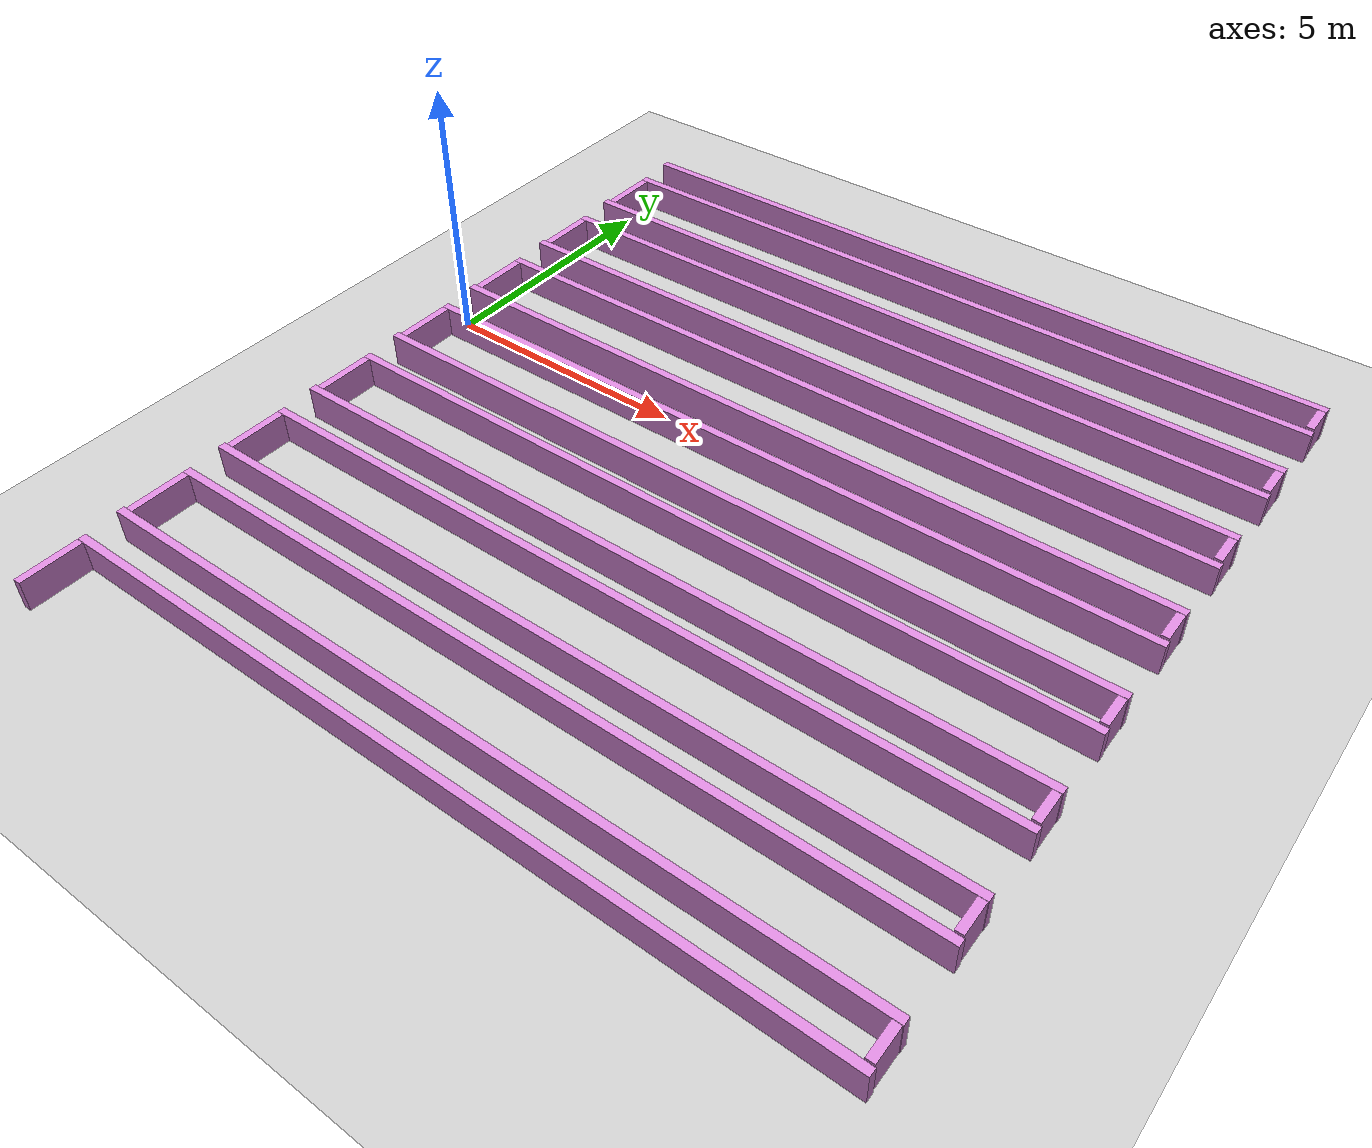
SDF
<sdf version="1.7">
 <world name="default">
  <light name="sun" type="directional">
   <pose>0 0 10 0 -0 0</pose>
   <diffuse>0.8 0.8 0.8 1</diffuse>
   <specular>0.2 0.2 0.2 1</specular>
   <attenuation>
    <range>1000</range>
    <constant>0.9</constant>
    <linear>0.01</linear>
    <quadratic>0.001</quadratic>
   </attenuation>
   <direction>-0.5 0.1 -0.9</direction>
   <spot><inner_angle>0</inner_angle><outer_angle>0</outer_angle><falloff>0</falloff></spot>
  </light>
  <model name="ground_plane">
   <static>1</static>
   <link name="link">
    <collision name="collision">
     <geometry><plane><normal>0 0 1</normal><size>100 100</size></plane></geometry>
     <surface>
      <contact><collide_bitmask>65535</collide_bitmask></contact>
      <friction><ode><mu>100</mu><mu2>50</mu2></ode></friction>
     </surface>
    </collision>
    <visual name="visual">
     <cast_shadows>0</cast_shadows>
     <geometry><plane><normal>0 0 1</normal><size>100 100</size></plane></geometry>
     <material>
      <script><uri>file://media/materials/scripts/gazebo.material</uri><name>Gazebo/Grey</name></script>
     </material>
    </visual>
   </link>
  </model>
  <gravity>0 0 -9.8</gravity>
  <magnetic_field>6e-06 2.3e-05 -4.2e-05</magnetic_field>
  <atmosphere type="adiabatic"/>
  <physics type="ode">
   <max_step_size>0.001</max_step_size>
   <real_time_factor>1</real_time_factor>
   <real_time_update_rate>1000</real_time_update_rate>
  </physics>
  <scene><ambient>0.4 0.4 0.4 1</ambient><background>0.7 0.7 0.7 1</background><shadows>1</shadows></scene>
  <audio><device>default</device></audio>
  <spherical_coordinates>
   <surface_model>EARTH_WGS84</surface_model>
   <latitude_deg>0</latitude_deg>
   <longitude_deg>0</longitude_deg>
   <elevation>0</elevation>
   <heading_deg>0</heading_deg>
  </spherical_coordinates>
  <model name="60cm_koridor">
   <pose>7.323 -0.566065 0 0 -0 0</pose>
   <link name="Wall_0">
    <collision name="Wall_0_Collision">
     <geometry><box><size>0.600141 0.15 0.65</size></box></geometry>
     <pose>0 0 0.325 0 -0 0</pose>
    </collision>
    <visual name="Wall_0_Visual">
     <pose>0 0 0.325 0 -0 0</pose>
     <geometry><box><size>0.600141 0.15 0.65</size></box></geometry>
     <material>
      <script><uri>file://media/materials/scripts/gazebo.material</uri><name>Gazebo/Grey</name></script>
      <ambient>0.862745 0.541176 0.866667 1</ambient>
     </material>
     <meta><layer>0</layer></meta>
    </visual>
    <pose>7.4125 0.576065 0 0 -0 -1.57302</pose>
   </link>
   <link name="Wall_11">
    <collision name="Wall_11_Collision">
     <geometry><box><size>1.15626 0.15 0.6</size></box></geometry>
     <pose>0 0 0.3 0 -0 0</pose>
    </collision>
    <visual name="Wall_11_Visual">
     <pose>0 0 0.3 0 -0 0</pose>
     <geometry><box><size>1.15626 0.15 0.6</size></box></geometry>
     <material>
      <script><uri>file://media/materials/scripts/gazebo.material</uri><name>Gazebo/Grey</name></script>
      <ambient>0.862745 0.541176 0.866667 1</ambient>
     </material>
     <meta><layer>0</layer></meta>
    </visual>
    <pose>-7.422 -0.450935 0 0 -0 -1.5708</pose>
   </link>
   <link name="Wall_2">
    <collision name="Wall_2_Collision">
     <geometry><box><size>15 0.15 0.65</size></box></geometry>
     <pose>0 0 0.325 0 -0 0</pose>
    </collision>
    <visual name="Wall_2_Visual">
     <pose>0 0 0.325 0 -0 0</pose>
     <geometry><box><size>15 0.15 0.65</size></box></geometry>
     <material>
      <script><uri>file://media/materials/scripts/gazebo.material</uri><name>Gazebo/Grey</name></script>
      <ambient>0.862745 0.541176 0.866667 1</ambient>
     </material>
     <meta><layer>0</layer></meta>
    </visual>
    <pose>-0.002 0.954065 0 0 -0 3.14159</pose>
   </link>
   <link name="Wall_4">
    <collision name="Wall_4_Collision">
     <geometry><box><size>15 0.15 0.6</size></box></geometry>
     <pose>0 0 0.3 0 -0 0</pose>
    </collision>
    <visual name="Wall_4_Visual">
     <pose>0 0 0.3 0 -0 0</pose>
     <geometry><box><size>15 0.15 0.6</size></box></geometry>
     <material>
      <script><uri>file://media/materials/scripts/gazebo.material</uri><name>Gazebo/Grey</name></script>
      <ambient>0.862745 0.541176 0.866667 1</ambient>
     </material>
     <meta><layer>0</layer></meta>
    </visual>
    <pose>0.002 0.203065 0 0 -0 0</pose>
   </link>
   <static>1</static>
  </model>
  <model name="60cm_koridor_clone">
   <pose>7.32347 -2.63015 0 0 -0 0</pose>
   <link name="Wall_0">
    <collision name="Wall_0_Collision">
     <geometry><box><size>0.600141 0.15 0.65</size></box></geometry>
     <pose>0 0 0.325 0 -0 0</pose>
    </collision>
    <visual name="Wall_0_Visual">
     <pose>0 0 0.325 0 -0 0</pose>
     <geometry><box><size>0.600141 0.15 0.65</size></box></geometry>
     <material>
      <script><uri>file://media/materials/scripts/gazebo.material</uri><name>Gazebo/Grey</name></script>
      <ambient>0.862745 0.541176 0.866667 1</ambient>
     </material>
     <meta><layer>0</layer></meta>
    </visual>
    <pose>7.4125 0.576065 0 0 -0 -1.57302</pose>
   </link>
   <link name="Wall_11">
    <collision name="Wall_11_Collision">
     <geometry><box><size>1.15626 0.15 0.6</size></box></geometry>
     <pose>0 0 0.3 0 -0 0</pose>
    </collision>
    <visual name="Wall_11_Visual">
     <pose>0 0 0.3 0 -0 0</pose>
     <geometry><box><size>1.15626 0.15 0.6</size></box></geometry>
     <material>
      <script><uri>file://media/materials/scripts/gazebo.material</uri><name>Gazebo/Grey</name></script>
      <ambient>0.862745 0.541176 0.866667 1</ambient>
     </material>
     <meta><layer>0</layer></meta>
    </visual>
    <pose>-7.422 -0.450935 0 0 -0 -1.5708</pose>
   </link>
   <link name="Wall_2">
    <collision name="Wall_2_Collision">
     <geometry><box><size>15 0.15 0.65</size></box></geometry>
     <pose>0 0 0.325 0 -0 0</pose>
    </collision>
    <visual name="Wall_2_Visual">
     <pose>0 0 0.325 0 -0 0</pose>
     <geometry><box><size>15 0.15 0.65</size></box></geometry>
     <material>
      <script><uri>file://media/materials/scripts/gazebo.material</uri><name>Gazebo/Grey</name></script>
      <ambient>0.862745 0.541176 0.866667 1</ambient>
     </material>
     <meta><layer>0</layer></meta>
    </visual>
    <pose>-0.002 0.954065 0 0 -0 3.14159</pose>
   </link>
   <link name="Wall_4">
    <collision name="Wall_4_Collision">
     <geometry><box><size>15 0.15 0.6</size></box></geometry>
     <pose>0 0 0.3 0 -0 0</pose>
    </collision>
    <visual name="Wall_4_Visual">
     <pose>0 0 0.3 0 -0 0</pose>
     <geometry><box><size>15 0.15 0.6</size></box></geometry>
     <material>
      <script><uri>file://media/materials/scripts/gazebo.material</uri><name>Gazebo/Grey</name></script>
      <ambient>0.862745 0.541176 0.866667 1</ambient>
     </material>
     <meta><layer>0</layer></meta>
    </visual>
    <pose>0.002 0.203065 0 0 -0 0</pose>
   </link>
   <static>1</static>
  </model>
  <model name="60cm_koridor_clone_clone">
   <pose>7.32707 -4.69709 0 0 -0 0</pose>
   <link name="Wall_0">
    <collision name="Wall_0_Collision">
     <geometry><box><size>0.600141 0.15 0.65</size></box></geometry>
     <pose>0 0 0.325 0 -0 0</pose>
    </collision>
    <visual name="Wall_0_Visual">
     <pose>0 0 0.325 0 -0 0</pose>
     <geometry><box><size>0.600141 0.15 0.65</size></box></geometry>
     <material>
      <script><uri>file://media/materials/scripts/gazebo.material</uri><name>Gazebo/Grey</name></script>
      <ambient>0.862745 0.541176 0.866667 1</ambient>
     </material>
     <meta><layer>0</layer></meta>
    </visual>
    <pose>7.4125 0.576065 0 0 -0 -1.57302</pose>
   </link>
   <link name="Wall_11">
    <collision name="Wall_11_Collision">
     <geometry><box><size>1.15626 0.15 0.6</size></box></geometry>
     <pose>0 0 0.3 0 -0 0</pose>
    </collision>
    <visual name="Wall_11_Visual">
     <pose>0 0 0.3 0 -0 0</pose>
     <geometry><box><size>1.15626 0.15 0.6</size></box></geometry>
     <material>
      <script><uri>file://media/materials/scripts/gazebo.material</uri><name>Gazebo/Grey</name></script>
      <ambient>0.862745 0.541176 0.866667 1</ambient>
     </material>
     <meta><layer>0</layer></meta>
    </visual>
    <pose>-7.422 -0.450935 0 0 -0 -1.5708</pose>
   </link>
   <link name="Wall_2">
    <collision name="Wall_2_Collision">
     <geometry><box><size>15 0.15 0.65</size></box></geometry>
     <pose>0 0 0.325 0 -0 0</pose>
    </collision>
    <visual name="Wall_2_Visual">
     <pose>0 0 0.325 0 -0 0</pose>
     <geometry><box><size>15 0.15 0.65</size></box></geometry>
     <material>
      <script><uri>file://media/materials/scripts/gazebo.material</uri><name>Gazebo/Grey</name></script>
      <ambient>0.862745 0.541176 0.866667 1</ambient>
     </material>
     <meta><layer>0</layer></meta>
    </visual>
    <pose>-0.002 0.954065 0 0 -0 3.14159</pose>
   </link>
   <link name="Wall_4">
    <collision name="Wall_4_Collision">
     <geometry><box><size>15 0.15 0.6</size></box></geometry>
     <pose>0 0 0.3 0 -0 0</pose>
    </collision>
    <visual name="Wall_4_Visual">
     <pose>0 0 0.3 0 -0 0</pose>
     <geometry><box><size>15 0.15 0.6</size></box></geometry>
     <material>
      <script><uri>file://media/materials/scripts/gazebo.material</uri><name>Gazebo/Grey</name></script>
      <ambient>0.862745 0.541176 0.866667 1</ambient>
     </material>
     <meta><layer>0</layer></meta>
    </visual>
    <pose>0.002 0.203065 0 0 -0 0</pose>
   </link>
   <static>1</static>
  </model>
  <model name="60cm_koridor_clone_clone_clone">
   <pose>7.33629 -6.75839 0 0 -0 0</pose>
   <link name="Wall_0">
    <collision name="Wall_0_Collision">
     <geometry><box><size>0.600141 0.15 0.65</size></box></geometry>
     <pose>0 0 0.325 0 -0 0</pose>
    </collision>
    <visual name="Wall_0_Visual">
     <pose>0 0 0.325 0 -0 0</pose>
     <geometry><box><size>0.600141 0.15 0.65</size></box></geometry>
     <material>
      <script><uri>file://media/materials/scripts/gazebo.material</uri><name>Gazebo/Grey</name></script>
      <ambient>0.862745 0.541176 0.866667 1</ambient>
     </material>
     <meta><layer>0</layer></meta>
    </visual>
    <pose>7.4125 0.576065 0 0 -0 -1.57302</pose>
   </link>
   <link name="Wall_11">
    <collision name="Wall_11_Collision">
     <geometry><box><size>1.15626 0.15 0.6</size></box></geometry>
     <pose>0 0 0.3 0 -0 0</pose>
    </collision>
    <visual name="Wall_11_Visual">
     <pose>0 0 0.3 0 -0 0</pose>
     <geometry><box><size>1.15626 0.15 0.6</size></box></geometry>
     <material>
      <script><uri>file://media/materials/scripts/gazebo.material</uri><name>Gazebo/Grey</name></script>
      <ambient>0.862745 0.541176 0.866667 1</ambient>
     </material>
     <meta><layer>0</layer></meta>
    </visual>
    <pose>-7.422 -0.450935 0 0 -0 -1.5708</pose>
   </link>
   <link name="Wall_2">
    <collision name="Wall_2_Collision">
     <geometry><box><size>15 0.15 0.65</size></box></geometry>
     <pose>0 0 0.325 0 -0 0</pose>
    </collision>
    <visual name="Wall_2_Visual">
     <pose>0 0 0.325 0 -0 0</pose>
     <geometry><box><size>15 0.15 0.65</size></box></geometry>
     <material>
      <script><uri>file://media/materials/scripts/gazebo.material</uri><name>Gazebo/Grey</name></script>
      <ambient>0.862745 0.541176 0.866667 1</ambient>
     </material>
     <meta><layer>0</layer></meta>
    </visual>
    <pose>-0.002 0.954065 0 0 -0 3.14159</pose>
   </link>
   <link name="Wall_4">
    <collision name="Wall_4_Collision">
     <geometry><box><size>15 0.15 0.6</size></box></geometry>
     <pose>0 0 0.3 0 -0 0</pose>
    </collision>
    <visual name="Wall_4_Visual">
     <pose>0 0 0.3 0 -0 0</pose>
     <geometry><box><size>15 0.15 0.6</size></box></geometry>
     <material>
      <script><uri>file://media/materials/scripts/gazebo.material</uri><name>Gazebo/Grey</name></script>
      <ambient>0.862745 0.541176 0.866667 1</ambient>
     </material>
     <meta><layer>0</layer></meta>
    </visual>
    <pose>0.002 0.203065 0 0 -0 0</pose>
   </link>
   <static>1</static>
  </model>
  <model name="60cm_koridor_clone_clone_clone_clone">
   <pose>7.34295 -8.82832 0 0 -0 0</pose>
   <link name="Wall_0">
    <collision name="Wall_0_Collision">
     <geometry><box><size>0.600141 0.15 0.65</size></box></geometry>
     <pose>0 0 0.325 0 -0 0</pose>
    </collision>
    <visual name="Wall_0_Visual">
     <pose>0 0 0.325 0 -0 0</pose>
     <geometry><box><size>0.600141 0.15 0.65</size></box></geometry>
     <material>
      <script><uri>file://media/materials/scripts/gazebo.material</uri><name>Gazebo/Grey</name></script>
      <ambient>0.862745 0.541176 0.866667 1</ambient>
     </material>
     <meta><layer>0</layer></meta>
    </visual>
    <pose>7.4125 0.576065 0 0 -0 -1.57302</pose>
   </link>
   <link name="Wall_11">
    <collision name="Wall_11_Collision">
     <geometry><box><size>1.15626 0.15 0.6</size></box></geometry>
     <pose>0 0 0.3 0 -0 0</pose>
    </collision>
    <visual name="Wall_11_Visual">
     <pose>0 0 0.3 0 -0 0</pose>
     <geometry><box><size>1.15626 0.15 0.6</size></box></geometry>
     <material>
      <script><uri>file://media/materials/scripts/gazebo.material</uri><name>Gazebo/Grey</name></script>
      <ambient>0.862745 0.541176 0.866667 1</ambient>
     </material>
     <meta><layer>0</layer></meta>
    </visual>
    <pose>-7.422 -0.450935 0 0 -0 -1.5708</pose>
   </link>
   <link name="Wall_2">
    <collision name="Wall_2_Collision">
     <geometry><box><size>15 0.15 0.65</size></box></geometry>
     <pose>0 0 0.325 0 -0 0</pose>
    </collision>
    <visual name="Wall_2_Visual">
     <pose>0 0 0.325 0 -0 0</pose>
     <geometry><box><size>15 0.15 0.65</size></box></geometry>
     <material>
      <script><uri>file://media/materials/scripts/gazebo.material</uri><name>Gazebo/Grey</name></script>
      <ambient>0.862745 0.541176 0.866667 1</ambient>
     </material>
     <meta><layer>0</layer></meta>
    </visual>
    <pose>-0.002 0.954065 0 0 -0 3.14159</pose>
   </link>
   <link name="Wall_4">
    <collision name="Wall_4_Collision">
     <geometry><box><size>15 0.15 0.6</size></box></geometry>
     <pose>0 0 0.3 0 -0 0</pose>
    </collision>
    <visual name="Wall_4_Visual">
     <pose>0 0 0.3 0 -0 0</pose>
     <geometry><box><size>15 0.15 0.6</size></box></geometry>
     <material>
      <script><uri>file://media/materials/scripts/gazebo.material</uri><name>Gazebo/Grey</name></script>
      <ambient>0.862745 0.541176 0.866667 1</ambient>
     </material>
     <meta><layer>0</layer></meta>
    </visual>
    <pose>0.002 0.203065 0 0 -0 0</pose>
   </link>
   <static>1</static>
  </model>
  <model name="60cm_koridor_clone_0">
   <pose>7.31136 1.50376 0 0 -0 0</pose>
   <link name="Wall_0">
    <collision name="Wall_0_Collision">
     <geometry><box><size>0.600141 0.15 0.65</size></box></geometry>
     <pose>0 0 0.325 0 -0 0</pose>
    </collision>
    <visual name="Wall_0_Visual">
     <pose>0 0 0.325 0 -0 0</pose>
     <geometry><box><size>0.600141 0.15 0.65</size></box></geometry>
     <material>
      <script><uri>file://media/materials/scripts/gazebo.material</uri><name>Gazebo/Grey</name></script>
      <ambient>0.862745 0.541176 0.866667 1</ambient>
     </material>
     <meta><layer>0</layer></meta>
    </visual>
    <pose>7.4125 0.576065 0 0 -0 -1.57302</pose>
   </link>
   <link name="Wall_11">
    <collision name="Wall_11_Collision">
     <geometry><box><size>1.15626 0.15 0.6</size></box></geometry>
     <pose>0 0 0.3 0 -0 0</pose>
    </collision>
    <visual name="Wall_11_Visual">
     <pose>0 0 0.3 0 -0 0</pose>
     <geometry><box><size>1.15626 0.15 0.6</size></box></geometry>
     <material>
      <script><uri>file://media/materials/scripts/gazebo.material</uri><name>Gazebo/Grey</name></script>
      <ambient>0.862745 0.541176 0.866667 1</ambient>
     </material>
     <meta><layer>0</layer></meta>
    </visual>
    <pose>-7.422 -0.450935 0 0 -0 -1.5708</pose>
   </link>
   <link name="Wall_2">
    <collision name="Wall_2_Collision">
     <geometry><box><size>15 0.15 0.65</size></box></geometry>
     <pose>0 0 0.325 0 -0 0</pose>
    </collision>
    <visual name="Wall_2_Visual">
     <pose>0 0 0.325 0 -0 0</pose>
     <geometry><box><size>15 0.15 0.65</size></box></geometry>
     <material>
      <script><uri>file://media/materials/scripts/gazebo.material</uri><name>Gazebo/Grey</name></script>
      <ambient>0.862745 0.541176 0.866667 1</ambient>
     </material>
     <meta><layer>0</layer></meta>
    </visual>
    <pose>-0.002 0.954065 0 0 -0 3.14159</pose>
   </link>
   <link name="Wall_4">
    <collision name="Wall_4_Collision">
     <geometry><box><size>15 0.15 0.6</size></box></geometry>
     <pose>0 0 0.3 0 -0 0</pose>
    </collision>
    <visual name="Wall_4_Visual">
     <pose>0 0 0.3 0 -0 0</pose>
     <geometry><box><size>15 0.15 0.6</size></box></geometry>
     <material>
      <script><uri>file://media/materials/scripts/gazebo.material</uri><name>Gazebo/Grey</name></script>
      <ambient>0.862745 0.541176 0.866667 1</ambient>
     </material>
     <meta><layer>0</layer></meta>
    </visual>
    <pose>0.002 0.203065 0 0 -0 0</pose>
   </link>
   <static>1</static>
  </model>
  <model name="60cm_koridor_clone_0_clone">
   <pose>7.30291 3.56758 0 0 -0 0</pose>
   <link name="Wall_0">
    <collision name="Wall_0_Collision">
     <geometry><box><size>0.600141 0.15 0.65</size></box></geometry>
     <pose>0 0 0.325 0 -0 0</pose>
    </collision>
    <visual name="Wall_0_Visual">
     <pose>0 0 0.325 0 -0 0</pose>
     <geometry><box><size>0.600141 0.15 0.65</size></box></geometry>
     <material>
      <script><uri>file://media/materials/scripts/gazebo.material</uri><name>Gazebo/Grey</name></script>
      <ambient>0.862745 0.541176 0.866667 1</ambient>
     </material>
     <meta><layer>0</layer></meta>
    </visual>
    <pose>7.4125 0.576065 0 0 -0 -1.57302</pose>
   </link>
   <link name="Wall_11">
    <collision name="Wall_11_Collision">
     <geometry><box><size>1.15626 0.15 0.6</size></box></geometry>
     <pose>0 0 0.3 0 -0 0</pose>
    </collision>
    <visual name="Wall_11_Visual">
     <pose>0 0 0.3 0 -0 0</pose>
     <geometry><box><size>1.15626 0.15 0.6</size></box></geometry>
     <material>
      <script><uri>file://media/materials/scripts/gazebo.material</uri><name>Gazebo/Grey</name></script>
      <ambient>0.862745 0.541176 0.866667 1</ambient>
     </material>
     <meta><layer>0</layer></meta>
    </visual>
    <pose>-7.422 -0.450935 0 0 -0 -1.5708</pose>
   </link>
   <link name="Wall_2">
    <collision name="Wall_2_Collision">
     <geometry><box><size>15 0.15 0.65</size></box></geometry>
     <pose>0 0 0.325 0 -0 0</pose>
    </collision>
    <visual name="Wall_2_Visual">
     <pose>0 0 0.325 0 -0 0</pose>
     <geometry><box><size>15 0.15 0.65</size></box></geometry>
     <material>
      <script><uri>file://media/materials/scripts/gazebo.material</uri><name>Gazebo/Grey</name></script>
      <ambient>0.862745 0.541176 0.866667 1</ambient>
     </material>
     <meta><layer>0</layer></meta>
    </visual>
    <pose>-0.002 0.954065 0 0 -0 3.14159</pose>
   </link>
   <link name="Wall_4">
    <collision name="Wall_4_Collision">
     <geometry><box><size>15 0.15 0.6</size></box></geometry>
     <pose>0 0 0.3 0 -0 0</pose>
    </collision>
    <visual name="Wall_4_Visual">
     <pose>0 0 0.3 0 -0 0</pose>
     <geometry><box><size>15 0.15 0.6</size></box></geometry>
     <material>
      <script><uri>file://media/materials/scripts/gazebo.material</uri><name>Gazebo/Grey</name></script>
      <ambient>0.862745 0.541176 0.866667 1</ambient>
     </material>
     <meta><layer>0</layer></meta>
    </visual>
    <pose>0.002 0.203065 0 0 -0 0</pose>
   </link>
   <static>1</static>
  </model>
  <model name="60cm_koridor_clone_0_clone_clone">
   <pose>7.30546 5.6327 0 0 -0 0</pose>
   <link name="Wall_0">
    <collision name="Wall_0_Collision">
     <geometry><box><size>0.600141 0.15 0.65</size></box></geometry>
     <pose>0 0 0.325 0 -0 0</pose>
    </collision>
    <visual name="Wall_0_Visual">
     <pose>0 0 0.325 0 -0 0</pose>
     <geometry><box><size>0.600141 0.15 0.65</size></box></geometry>
     <material>
      <script><uri>file://media/materials/scripts/gazebo.material</uri><name>Gazebo/Grey</name></script>
      <ambient>0.862745 0.541176 0.866667 1</ambient>
     </material>
     <meta><layer>0</layer></meta>
    </visual>
    <pose>7.4125 0.576065 0 0 -0 -1.57302</pose>
   </link>
   <link name="Wall_11">
    <collision name="Wall_11_Collision">
     <geometry><box><size>1.15626 0.15 0.6</size></box></geometry>
     <pose>0 0 0.3 0 -0 0</pose>
    </collision>
    <visual name="Wall_11_Visual">
     <pose>0 0 0.3 0 -0 0</pose>
     <geometry><box><size>1.15626 0.15 0.6</size></box></geometry>
     <material>
      <script><uri>file://media/materials/scripts/gazebo.material</uri><name>Gazebo/Grey</name></script>
      <ambient>0.862745 0.541176 0.866667 1</ambient>
     </material>
     <meta><layer>0</layer></meta>
    </visual>
    <pose>-7.422 -0.450935 0 0 -0 -1.5708</pose>
   </link>
   <link name="Wall_2">
    <collision name="Wall_2_Collision">
     <geometry><box><size>15 0.15 0.65</size></box></geometry>
     <pose>0 0 0.325 0 -0 0</pose>
    </collision>
    <visual name="Wall_2_Visual">
     <pose>0 0 0.325 0 -0 0</pose>
     <geometry><box><size>15 0.15 0.65</size></box></geometry>
     <material>
      <script><uri>file://media/materials/scripts/gazebo.material</uri><name>Gazebo/Grey</name></script>
      <ambient>0.862745 0.541176 0.866667 1</ambient>
     </material>
     <meta><layer>0</layer></meta>
    </visual>
    <pose>-0.002 0.954065 0 0 -0 3.14159</pose>
   </link>
   <link name="Wall_4">
    <collision name="Wall_4_Collision">
     <geometry><box><size>15 0.15 0.6</size></box></geometry>
     <pose>0 0 0.3 0 -0 0</pose>
    </collision>
    <visual name="Wall_4_Visual">
     <pose>0 0 0.3 0 -0 0</pose>
     <geometry><box><size>15 0.15 0.6</size></box></geometry>
     <material>
      <script><uri>file://media/materials/scripts/gazebo.material</uri><name>Gazebo/Grey</name></script>
      <ambient>0.862745 0.541176 0.866667 1</ambient>
     </material>
     <meta><layer>0</layer></meta>
    </visual>
    <pose>0.002 0.203065 0 0 -0 0</pose>
   </link>
   <static>1</static>
  </model>
 </world>
</sdf>
